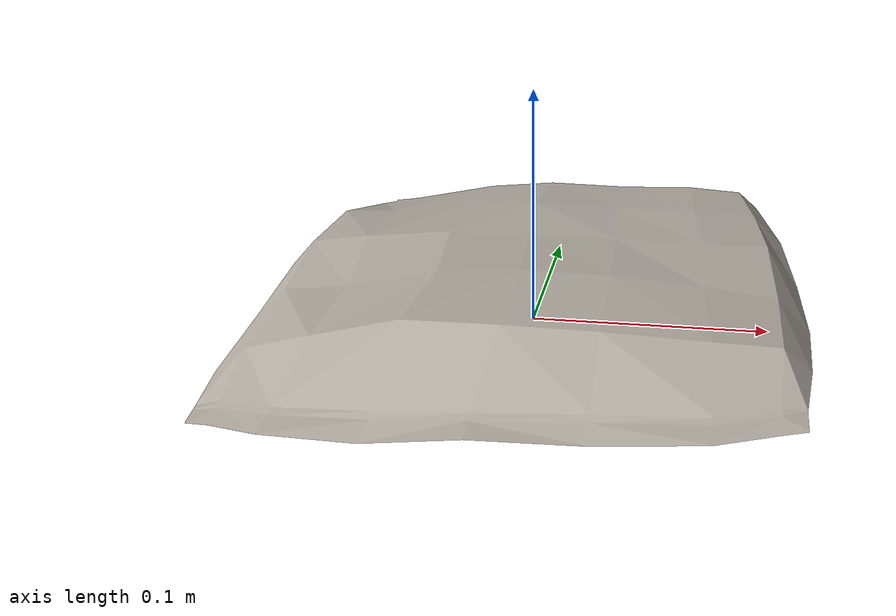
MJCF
<?xml version="1.0" encoding="utf-8"?>
<mujoco model="crisps">
  <compiler angle="radian" meshdir="assets" texturedir="assets" autolimits="true"/>
  <asset>
    <mesh file="crisps.obj"/>
    <texture type="2d" name="crisps" file="crisps.png"/>
    <material name="crisps" specular="0.2" shininess="0.2" texture="crisps"/>
  </asset>
  <default>
    <default class="crisps">
      <geom type="mesh" mass="0.1" solimp="0.95 0.98 0.001" solref="0.004 1"/>
    </default>
  </default>
  <worldbody>
    <body name="crisps" childclass="crisps">
      <geom name="crisps" mesh="crisps" material="crisps" euler="1.5708 0 0"/>
    </body>
  </worldbody>
</mujoco>
